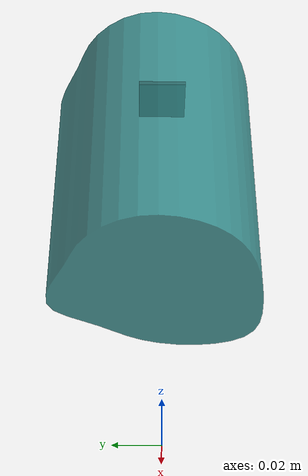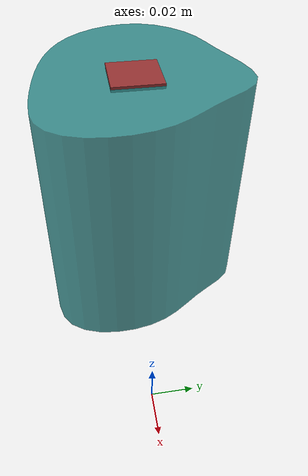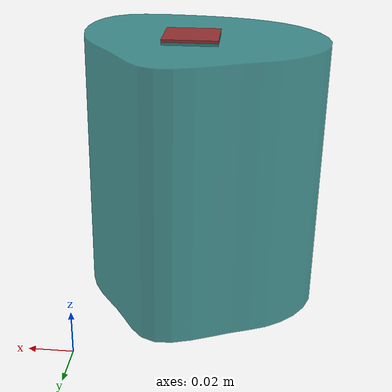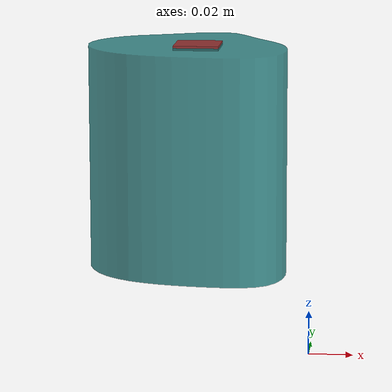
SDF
<?xml version="1.0"?>

<!--
  This file contains a cylinder which rotates only around
  the z-axis. The x and y values are fixed. The cylinder
  has arbitrary geometry.
-->

<sdf version="1.7">
  <model name="any_cylinder">

    <joint name="world_cylinder_offset" type="fixed">
      <child>cylinder_root</child>
      <parent>world</parent>
      <axis>
        <limit>
          <effort>0</effort>
        </limit>
      </axis>
    </joint>

    <link name="cylinder_root">
      <pose relative_to="__model__">-0.05 0.0 0.09 0.0 0 0</pose>
    </link>

    <joint name="cylinder_root_joint" type="revolute">
        <child>cylinder_link</child>
        <parent>cylinder_root</parent>
        <axis>
          <xyz>0 0 1</xyz>
          <limit>
            <effort>0</effort>
          </limit>
        </axis>
    </joint>

    <link name="cylinder_link">
      <pose relative_to="cylinder_root">0 0 0 0 0 0</pose>
      <inertial>
        <mass>1.0</mass>
        <inertia>
          <ixx>0.001</ixx>
          <ixy>0</ixy>
          <ixz>0</ixz>
          <iyy>0.001</iyy>
          <iyz>0</iyz>
          <izz>0.001</izz>
        </inertia>
      </inertial>

      <visual name="visual">
        <pose relative_to="cylinder_root">0 0 0 0 0 0</pose>
        <geometry>
          <mesh>
            <scale>1 1 1</scale>
            <uri>package://quasistatic_simulator/yongpeng/models/migrate_from_drake/custom_objects/meshes/geom_bspline_1.obj</uri>
          </mesh>
        </geometry>
        <material>
          <diffuse>0.1 0.5 0.5 0.8</diffuse>
        </material>
      </visual>

      <visual name="visual_2">
        <pose> 0 0 0.05 0 0 0 </pose>
        <geometry>
          <box>
           <size>0.02 0.02 0.002 </size>
          </box>
        </geometry>
        <material>
          <diffuse>0.6 0.2 0.2 0.9</diffuse>
        </material>
      </visual>

      <collision name="collision">
        <pose> 0 0 0 0 0 0 </pose>
        <geometry>
          <mesh>
            <scale>1 1 1</scale>
            <uri>package://quasistatic_simulator/yongpeng/models/migrate_from_drake/custom_objects/meshes/geom_bspline_1.obj</uri>
          </mesh>
        </geometry>
        <surface>
          <friction>
            <ode>
              <mu>1.0</mu>
              <mu2>1.0</mu2>
            </ode>
          </friction>
        </surface>
      </collision>

      <visual name="collision_vis">
        <pose> 0 0 0 0 0 0 </pose>
        <geometry>
          <mesh>
            <scale>1 1 1</scale>
            <uri>package://quasistatic_simulator/yongpeng/models/migrate_from_drake/custom_objects/meshes/geom_bspline_1.obj</uri>
          </mesh>
        </geometry>
        <material>
          <diffuse>0.8 0.2 0.2 0.4</diffuse>
        </material>
      </visual>

    </link>

  </model>
</sdf>
